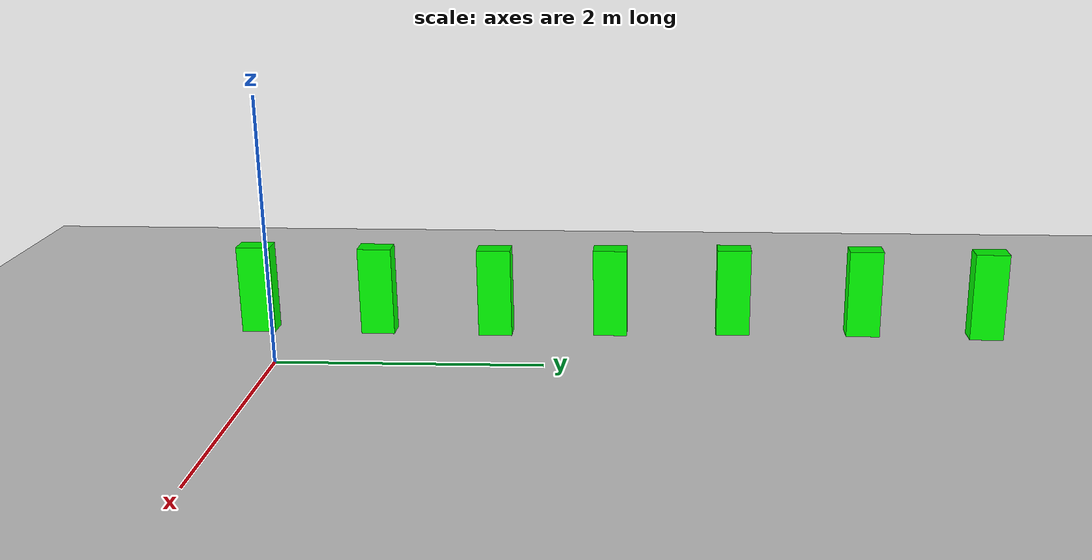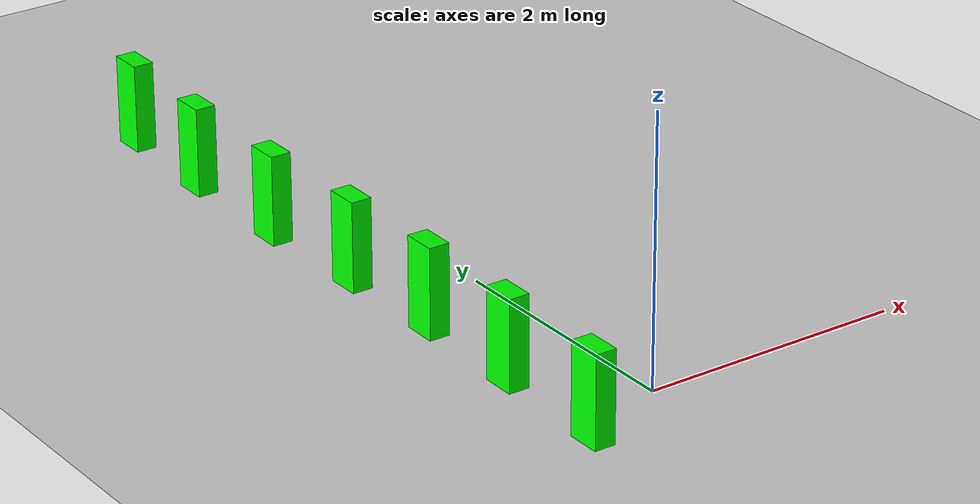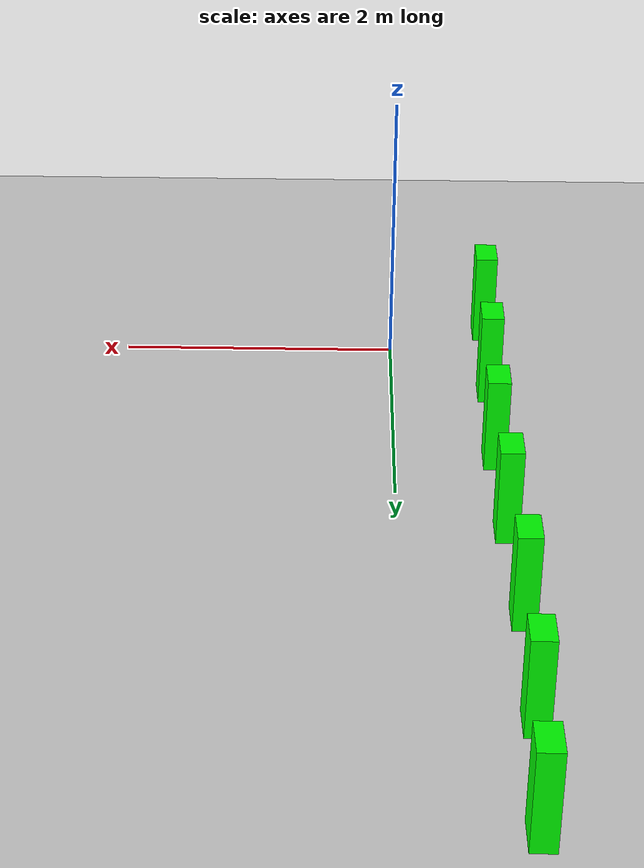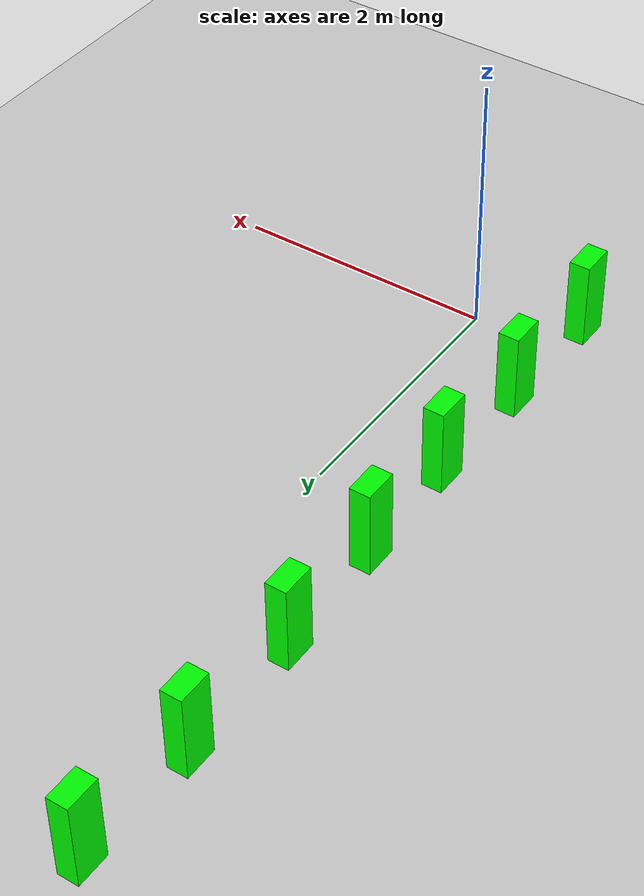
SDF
<sdf version="1.7">
 <world name="default">
  <scene><ambient>0.4 0.4 0.4 1</ambient><background>0.7 0.7 0.7 1</background><shadows>1</shadows></scene>
  <light name="sun" type="directional">
   <pose>0 0 10 0 -0 0</pose>
   <diffuse>0.8 0.8 0.8 1</diffuse>
   <specular>0.1 0.1 0.1 1</specular>
   <attenuation>
    <range>1000</range>
    <constant>0.9</constant>
    <linear>0.01</linear>
    <quadratic>0.001</quadratic>
   </attenuation>
   <direction>-0.5 0.5 -1</direction>
   <spot><inner_angle>0</inner_angle><outer_angle>0</outer_angle><falloff>0</falloff></spot>
  </light>
  <model name="ground_plane">
   <static>1</static>
   <link name="link">
    <collision name="collision">
     <geometry><plane><normal>0 0 1</normal><size>100 100</size></plane></geometry>
     <surface><friction><ode><mu>100</mu><mu2>50</mu2></ode></friction></surface>
    </collision>
    <visual name="visual">
     <cast_shadows>0</cast_shadows>
     <geometry><plane><normal>0 0 1</normal><size>100 100</size></plane></geometry>
     <material>
      <script><uri>file://media/materials/scripts/gazebo.material</uri><name>Gazebo/Grey</name></script>
     </material>
    </visual>
   </link>
  </model>
  <physics name="default_physics" default="0" type="ode">
   <real_time_update_rate>1000</real_time_update_rate>
   <max_step_size>0.001</max_step_size>
   <real_time_factor>1</real_time_factor>
   <ode>
    <solver>
     <type>quick</type>
     <iters>150</iters>
     <precon_iters>0</precon_iters>
     <sor>1.4</sor>
     <use_dynamic_moi_rescaling>1</use_dynamic_moi_rescaling>
    </solver>
    <constraints>
     <cfm>1e-05</cfm>
     <erp>0.2</erp>
     <contact_max_correcting_vel>2000</contact_max_correcting_vel>
     <contact_surface_layer>0.01</contact_surface_layer>
    </constraints>
   </ode>
  </physics>
  <gravity>0 0 -9.8</gravity>
  <magnetic_field>6e-06 2.3e-05 -4.2e-05</magnetic_field>
  <atmosphere type="adiabatic"/>
  <spherical_coordinates>
   <surface_model>EARTH_WGS84</surface_model>
   <latitude_deg>0</latitude_deg>
   <longitude_deg>0</longitude_deg>
   <elevation>0</elevation>
   <heading_deg>0</heading_deg>
  </spherical_coordinates>
  <model name="unit_box_0">
   <pose>-0.715794 -0.307075 0.34458 0 -1e-06 3e-06</pose>
   <link name="link">
    <inertial>
     <mass>1</mass>
     <inertia>
      <ixx>0.166667</ixx>
      <ixy>0</ixy>
      <ixz>0</ixz>
      <iyy>0.166667</iyy>
      <iyz>0</iyz>
      <izz>0.166667</izz>
     </inertia>
    </inertial>
    <collision name="collision">
     <geometry><box><size>0.158214 0.260262 0.689159</size></box></geometry>
    </collision>
    <visual name="visual">
     <geometry><box><size>0.158214 0.260262 0.689159</size></box></geometry>
     <material>
      <script><name>Gazebo/Grey</name><uri>file://media/materials/scripts/gazebo.material</uri></script>
      <diffuse>0 1 0 1</diffuse>
     </material>
    </visual>
   </link>
  </model>
  <model name="unit_box_0_clone">
   <pose>-0.694051 1.56528 0.34458 0 3e-06 -0.005228</pose>
   <link name="link">
    <inertial>
     <mass>1</mass>
     <inertia>
      <ixx>0.166667</ixx>
      <ixy>0</ixy>
      <ixz>0</ixz>
      <iyy>0.166667</iyy>
      <iyz>0</iyz>
      <izz>0.166667</izz>
     </inertia>
    </inertial>
    <collision name="collision">
     <geometry><box><size>0.158214 0.260262 0.689159</size></box></geometry>
    </collision>
    <visual name="visual">
     <geometry><box><size>0.158214 0.260262 0.689159</size></box></geometry>
     <material>
      <script><name>Gazebo/Grey</name><uri>file://media/materials/scripts/gazebo.material</uri></script>
      <diffuse>0 1 0 1</diffuse>
     </material>
    </visual>
   </link>
  </model>
  <model name="unit_box_0_clone_0">
   <pose>-0.7202 2.4634 0.344579 0 1e-06 -6e-06</pose>
   <link name="link">
    <inertial>
     <mass>1</mass>
     <inertia>
      <ixx>0.166667</ixx>
      <ixy>0</ixy>
      <ixz>0</ixz>
      <iyy>0.166667</iyy>
      <iyz>0</iyz>
      <izz>0.166667</izz>
     </inertia>
    </inertial>
    <collision name="collision">
     <geometry><box><size>0.158214 0.260262 0.689159</size></box></geometry>
    </collision>
    <visual name="visual">
     <geometry><box><size>0.158214 0.260262 0.689159</size></box></geometry>
     <material>
      <script><name>Gazebo/Grey</name><uri>file://media/materials/scripts/gazebo.material</uri></script>
      <diffuse>0 1 0 1</diffuse>
     </material>
    </visual>
   </link>
  </model>
  <model name="unit_box_0_clone_1">
   <pose>-0.705796 0.639522 0.344579 -0 1e-06 -0.005245</pose>
   <link name="link">
    <inertial>
     <mass>1</mass>
     <inertia>
      <ixx>0.166667</ixx>
      <ixy>0</ixy>
      <ixz>0</ixz>
      <iyy>0.166667</iyy>
      <iyz>0</iyz>
      <izz>0.166667</izz>
     </inertia>
    </inertial>
    <collision name="collision">
     <geometry><box><size>0.158214 0.260262 0.689159</size></box></geometry>
    </collision>
    <visual name="visual">
     <geometry><box><size>0.158214 0.260262 0.689159</size></box></geometry>
     <material>
      <script><name>Gazebo/Grey</name><uri>file://media/materials/scripts/gazebo.material</uri></script>
      <diffuse>0 1 0 1</diffuse>
     </material>
    </visual>
   </link>
  </model>
  <model name="unit_box_0_clone_2">
   <pose>-0.761276 3.42058 0.34458 0 3e-06 -4e-06</pose>
   <link name="link">
    <inertial>
     <mass>1</mass>
     <inertia>
      <ixx>0.166667</ixx>
      <ixy>0</ixy>
      <ixz>0</ixz>
      <iyy>0.166667</iyy>
      <iyz>0</iyz>
      <izz>0.166667</izz>
     </inertia>
    </inertial>
    <collision name="collision">
     <geometry><box><size>0.158214 0.260262 0.689159</size></box></geometry>
    </collision>
    <visual name="visual">
     <geometry><box><size>0.158214 0.260262 0.689159</size></box></geometry>
     <material>
      <script><name>Gazebo/Grey</name><uri>file://media/materials/scripts/gazebo.material</uri></script>
      <diffuse>0 1 0 1</diffuse>
     </material>
    </visual>
   </link>
  </model>
  <model name="unit_box_0_clone_3">
   <pose>-0.758758 4.43504 0.344579 0 -1e-06 -8e-06</pose>
   <link name="link">
    <inertial>
     <mass>1</mass>
     <inertia>
      <ixx>0.166667</ixx>
      <ixy>0</ixy>
      <ixz>0</ixz>
      <iyy>0.166667</iyy>
      <iyz>0</iyz>
      <izz>0.166667</izz>
     </inertia>
    </inertial>
    <collision name="collision">
     <geometry><box><size>0.158214 0.260262 0.689159</size></box></geometry>
    </collision>
    <visual name="visual">
     <geometry><box><size>0.158214 0.260262 0.689159</size></box></geometry>
     <material>
      <script><name>Gazebo/Grey</name><uri>file://media/materials/scripts/gazebo.material</uri></script>
      <diffuse>0 1 0 1</diffuse>
     </material>
    </visual>
   </link>
  </model>
  <model name="unit_box_0_clone_3_clone">
   <pose>-0.7164 5.38432 0.344579 -0 1e-06 -2e-06</pose>
   <link name="link">
    <inertial>
     <mass>1</mass>
     <inertia>
      <ixx>0.166667</ixx>
      <ixy>0</ixy>
      <ixz>0</ixz>
      <iyy>0.166667</iyy>
      <iyz>0</iyz>
      <izz>0.166667</izz>
     </inertia>
    </inertial>
    <collision name="collision">
     <geometry><box><size>0.158214 0.260262 0.689159</size></box></geometry>
    </collision>
    <visual name="visual">
     <geometry><box><size>0.158214 0.260262 0.689159</size></box></geometry>
     <material>
      <script><name>Gazebo/Grey</name><uri>file://media/materials/scripts/gazebo.material</uri></script>
      <diffuse>0 1 0 1</diffuse>
     </material>
    </visual>
   </link>
  </model>
 </world>
</sdf>
